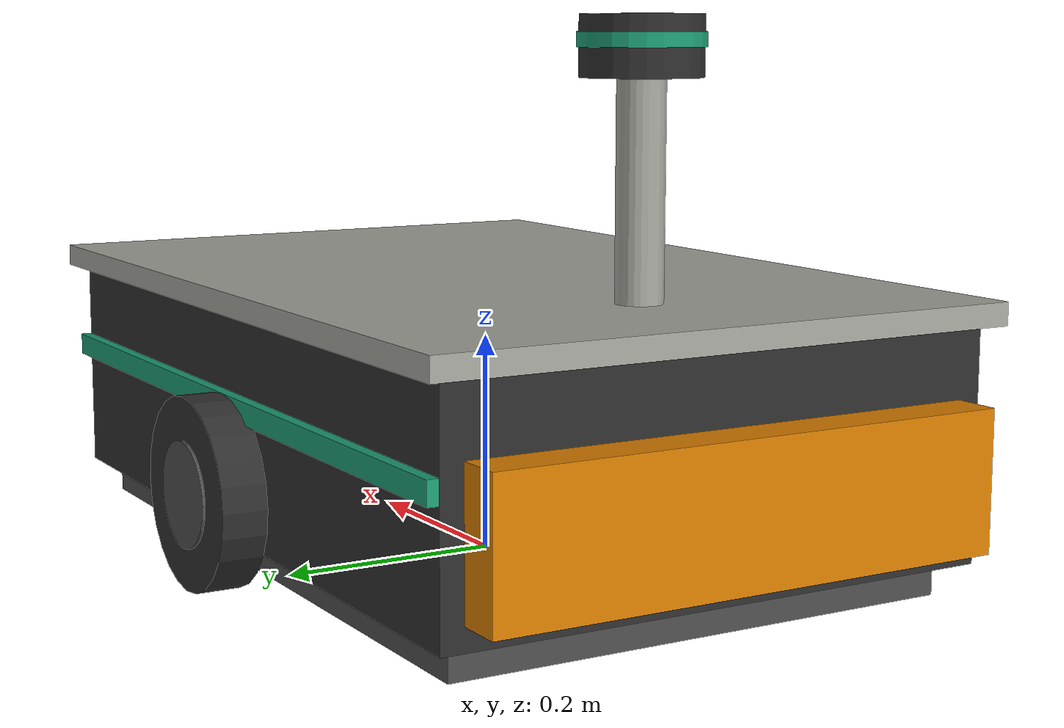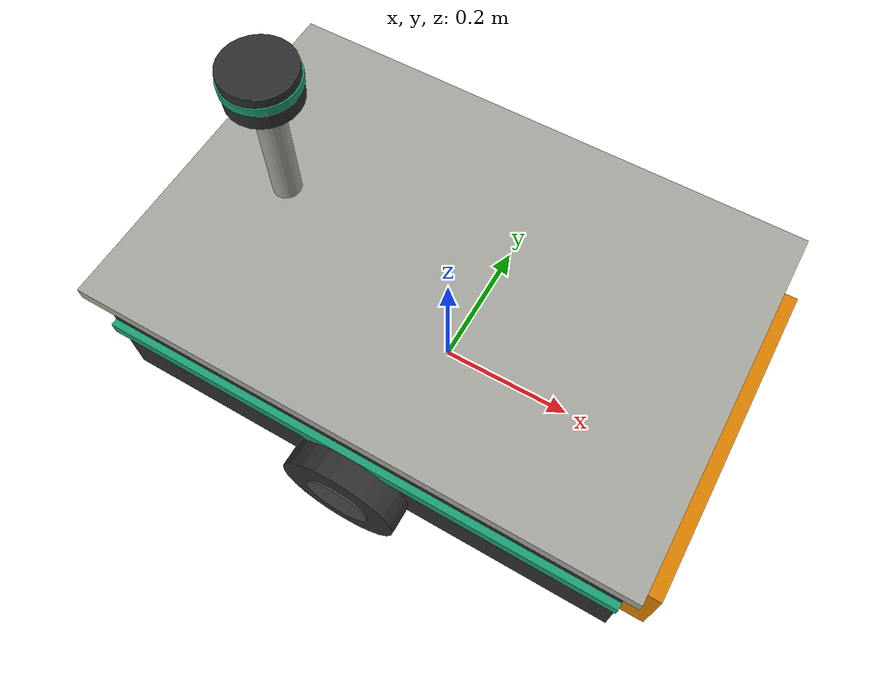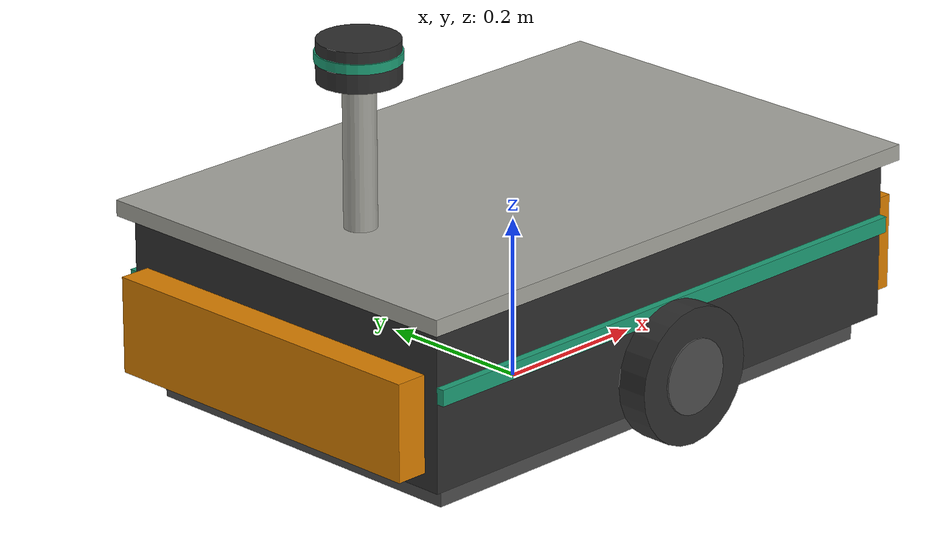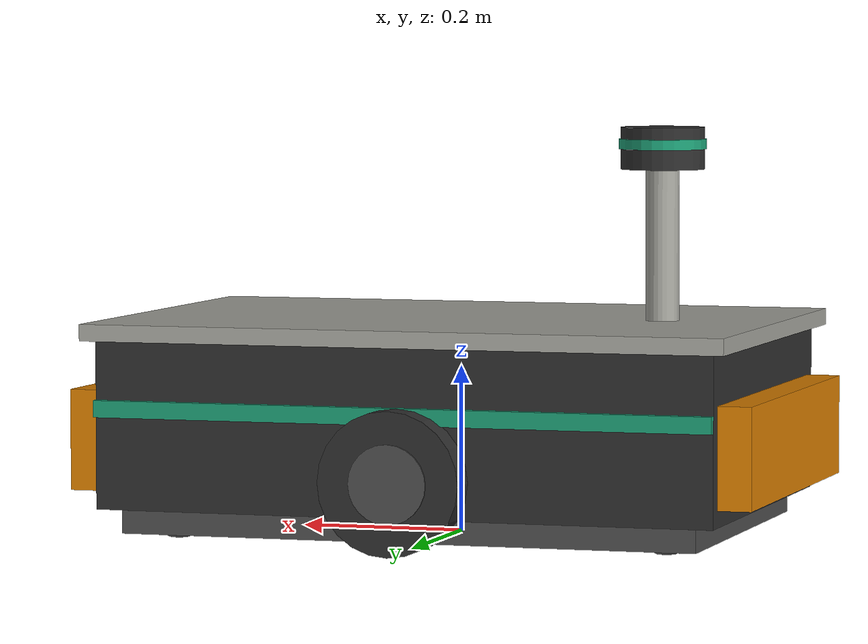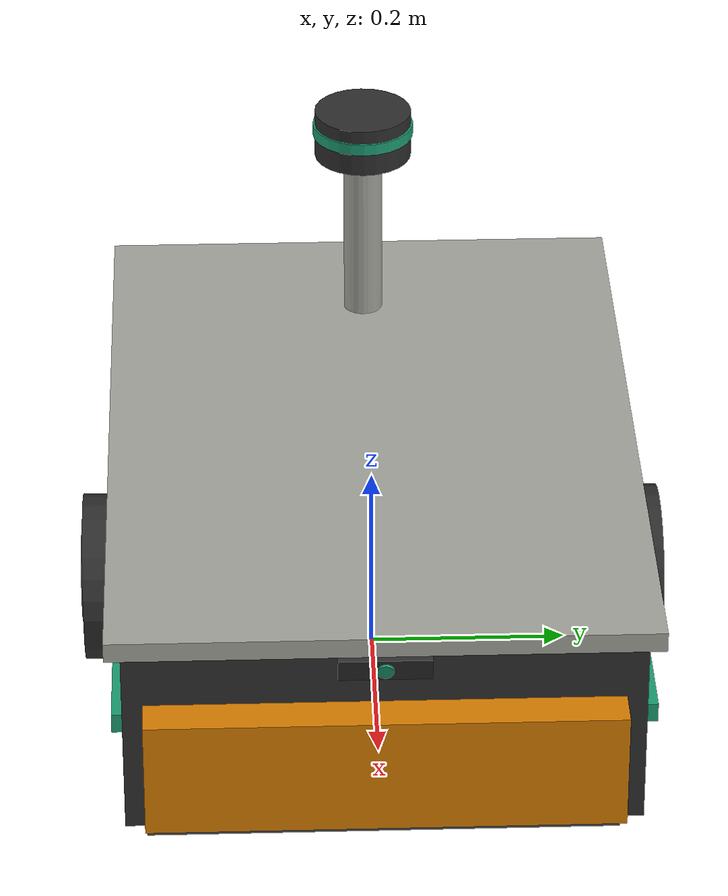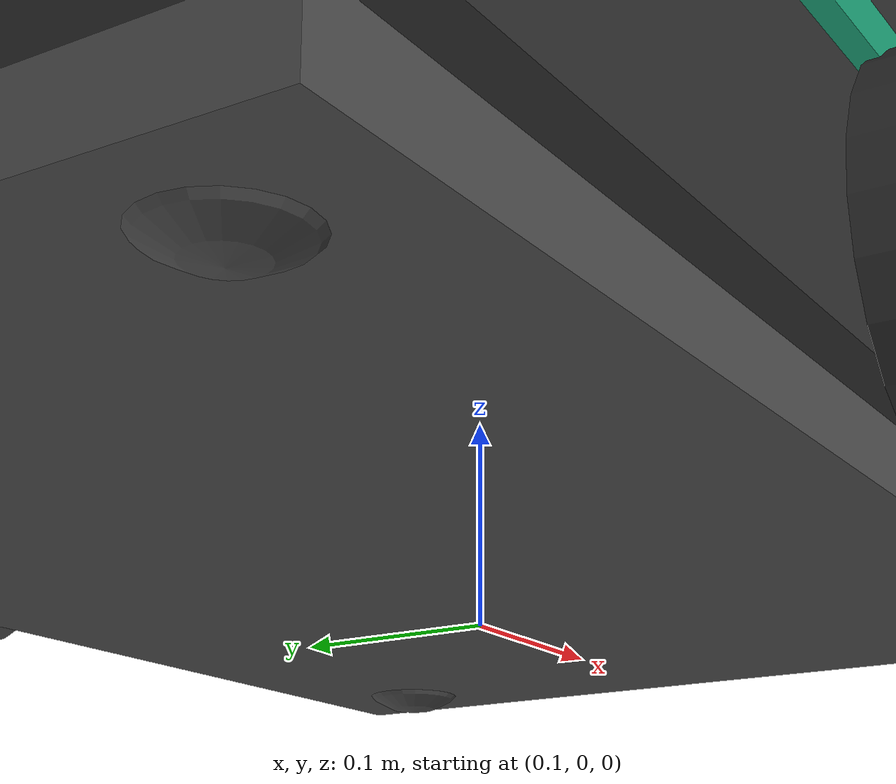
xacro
<?xml version="1.0"?>
<robot xmlns:xacro="http://www.ros.org/wiki/xacro" name="helmsman">

    <!-- ================= Properties ================= -->
    <xacro:property name="body_length" value="0.75"/>
    <xacro:property name="body_width" value="0.50"/>
    <xacro:property name="body_height" value="0.20"/>
    <xacro:property name="body_mass" value="25.0"/>

    <xacro:property name="wheel_radius" value="0.085"/>
    <xacro:property name="ground_clearance" value="0.04"/>

    <xacro:property name="wheel_width" value="0.04"/>
    <xacro:property name="wheel_mass" value="1.5"/>
    <xacro:property name="wheel_x_offset" value="0.0"/>
    <xacro:property name="caster_radius" value="0.04"/>
    <xacro:property name="caster_mass" value="0.3"/>
    <xacro:property name="caster_x" value="0.30"/>
    <xacro:property name="caster_y" value="0.17"/>

    <xacro:property name="mast_height" value="0.18"/>
    <xacro:property name="mast_radius" value="0.02"/>
    <xacro:property name="lidar_radius" value="0.05"/>
    <xacro:property name="lidar_height" value="0.05"/>
    <xacro:property name="lidar_mass" value="0.4"/>
    <xacro:property name="camera_tilt_deg" value="12"/>

    <!-- ================= Materials (as macros, inlined per visual) ================= -->
    <xacro:macro name="mat_charcoal">
        <material name="charcoal">
            <color rgba="0.18 0.18 0.18 1.0"/>
        </material>
    </xacro:macro>
    <xacro:macro name="mat_light_gray">
        <material name="light_gray">
            <color rgba="0.65 0.65 0.62 1.0"/>
        </material>
    </xacro:macro>
    <xacro:macro name="mat_dark_gray">
        <material name="dark_gray">
            <color rgba="0.30 0.30 0.30 1.0"/>
        </material>
    </xacro:macro>
    <xacro:macro name="mat_teal">
        <material name="teal">
            <color rgba="0.11 0.62 0.46 1.0"/>
        </material>
    </xacro:macro>
    <xacro:macro name="mat_orange">
        <material name="orange">
            <color rgba="0.86 0.50 0.0 1.0"/>
        </material>
    </xacro:macro>

    <!-- ================= Inertia macros ================= -->
    <xacro:macro name="box_inertia" params="m x y z">
        <inertial>
            <mass value="${m}"/>
            <inertia ixx="${(m/12.0)*(y*y+z*z)}" ixy="0" ixz="0" iyy="${(m/12.0)*(x*x+z*z)}" iyz="0" izz="${(m/12.0)*(x*x+y*y)}"/>
        </inertial>
    </xacro:macro>

    <xacro:macro name="cylinder_inertia" params="m r h">
        <inertial>
            <mass value="${m}"/>
            <inertia ixx="${(m/12.0)*(3*r*r + h*h)}" ixy="0" ixz="0" iyy="${(m/12.0)*(3*r*r + h*h)}" iyz="0" izz="${(m/2.0)*r*r}"/>
        </inertial>
    </xacro:macro>

    <xacro:macro name="sphere_inertia" params="m r">
        <inertial>
            <mass value="${m}"/>
            <inertia ixx="${(2.0/5.0)*m*r*r}" ixy="0" ixz="0" iyy="${(2.0/5.0)*m*r*r}" iyz="0" izz="${(2.0/5.0)*m*r*r}"/>
        </inertial>
    </xacro:macro>

    <!-- ================= Drive wheels ================= -->
    <xacro:macro name="drive_wheel" params="side reflect">
        <link name="${side}_wheel_link">
            <visual>
                <origin rpy="${pi/2} 0 0"/>
                <geometry>
                    <cylinder radius="${wheel_radius}" length="${wheel_width}"/>
                </geometry>
                <xacro:mat_charcoal/>
            </visual>
            <!-- hub cap: shallower, slightly wider-looking dark disc -->
            <visual>
                <origin xyz="0 ${reflect * wheel_width/2} 0" rpy="${pi/2} 0 0"/>
                <geometry>
                    <cylinder radius="${wheel_radius * 0.55}" length="0.005"/>
                </geometry>
                <xacro:mat_dark_gray/>
            </visual>
            <collision>
                <origin rpy="${pi/2} 0 0"/>
                <geometry>
                    <cylinder radius="${wheel_radius}" length="${wheel_width}"/>
                </geometry>
            </collision>
            <xacro:cylinder_inertia m="${wheel_mass}" r="${wheel_radius}" h="${wheel_width}"/>
        </link>

        <joint name="${side}_wheel_joint" type="continuous">
            <parent link="base_link"/>
            <child link="${side}_wheel_link"/>
            <origin xyz="${wheel_x_offset} ${reflect * (body_width/2 + wheel_width/2 + 0.005)} ${-(ground_clearance + body_height/2) + wheel_radius}" rpy="0 0 0"/>
            <axis xyz="0 1 0"/>
        </joint>
    </xacro:macro>

    <xacro:drive_wheel side="left" reflect="1"/>
    <xacro:drive_wheel side="right" reflect="-1"/>

    <!-- ================= Casters: frictionless spheres ================= -->
    <xacro:macro name="caster" params="prefix x_reflect y_reflect">
        <link name="${prefix}_caster_link">
            <visual>
                <geometry>
                    <sphere radius="${caster_radius}"/>
                </geometry>
                <xacro:mat_dark_gray/>
            </visual>
            <collision>
                <geometry>
                    <sphere radius="${caster_radius}"/>
                </geometry>
            </collision>
            <xacro:sphere_inertia m="${caster_mass}" r="${caster_radius}"/>
        </link>

        <joint name="${prefix}_caster_joint" type="fixed">
            <parent link="base_link"/>
            <child link="${prefix}_caster_link"/>
            <origin xyz="${x_reflect * caster_x} ${y_reflect * caster_y} ${-(ground_clearance + body_height/2) + caster_radius}"/>
        </joint>
    </xacro:macro>

    <xacro:caster prefix="front_left" x_reflect="1" y_reflect="1"/>
    <xacro:caster prefix="front_right" x_reflect="1" y_reflect="-1"/>
    <xacro:caster prefix="rear_left" x_reflect="-1" y_reflect="1"/>
    <xacro:caster prefix="rear_right" x_reflect="-1" y_reflect="-1"/>

    <!-- ================= base_footprint ================= -->
    <link name="base_footprint"/>

    <joint name="base_footprint_joint" type="fixed">
        <parent link="base_footprint"/>
        <child link="base_link"/>
        <origin xyz="0 0 ${ground_clearance + body_height/2}" rpy="0 0 0"/>
    </joint>

    <!-- ================= base_link: the chassis ================= -->
    <link name="base_link">

        <!-- main body -->
        <visual>
            <geometry>
                <box size="${body_length} ${body_width} ${body_height}"/>
            </geometry>
            <xacro:mat_charcoal/>
        </visual>

        <!-- deck plate: slightly larger, thin, sits on top -->
        <visual>
            <origin xyz="0 0 ${body_height/2 + 0.01}"/>
            <geometry>
                <box size="${body_length + 0.03} ${body_width + 0.03} 0.02"/>
            </geometry>
            <xacro:mat_light_gray/>
        </visual>

        <!-- underbody skirt: narrower, hangs below -->
        <visual>
            <origin xyz="0 0 ${-body_height/2 - 0.015}"/>
            <geometry>
                <box size="${body_length - 0.05} ${body_width - 0.04} 0.03"/>
            </geometry>
            <xacro:mat_dark_gray/>
        </visual>

        <!-- LED strips, left and right flanks -->
        <visual>
            <origin xyz="0 ${ body_width/2 + 0.005} 0.02"/>
            <geometry>
                <box size="${body_length} 0.01 0.02"/>
            </geometry>
            <xacro:mat_teal/>
        </visual>
        <visual>
            <origin xyz="0 ${-body_width/2 - 0.005} 0.02"/>
            <geometry>
                <box size="${body_length} 0.01 0.02"/>
            </geometry>
            <xacro:mat_teal/>
        </visual>

        <!-- bumper bars, front and rear -->
        <visual>
            <origin xyz="${ body_length/2 + 0.02} 0 -0.02"/>
            <geometry>
                <box size="0.04 ${body_width - 0.04} 0.12"/>
            </geometry>
            <xacro:mat_orange/>
        </visual>
        <visual>
            <origin xyz="${-body_length/2 - 0.02} 0 -0.02"/>
            <geometry>
                <box size="0.04 ${body_width - 0.04} 0.12"/>
            </geometry>
            <xacro:mat_orange/>
        </visual>

        <!-- sensor mast, rear of deck -->
        <visual>
            <origin xyz="-0.25 0 ${body_height/2 + 0.02 + mast_height/2}"/>
            <geometry>
                <cylinder radius="${mast_radius}" length="${mast_height}"/>
            </geometry>
            <xacro:mat_light_gray/>
        </visual>

        <!-- ONE simple collision for the whole chassis -->
        <collision>
            <geometry>
                <box size="${body_length + 0.08} ${body_width} ${body_height + 0.05}"/>
            </geometry>
        </collision>

        <xacro:box_inertia m="${body_mass}" x="${body_length}" y="${body_width}" z="${body_height}"/>
    </link>

    <!-- ================= Lidar ================= -->
    <link name="lidar_link">
        <visual>
            <geometry>
                <cylinder radius="${lidar_radius}" length="${lidar_height}"/>
            </geometry>
            <xacro:mat_charcoal/>
        </visual>
        <!-- emitter window band -->
        <visual>
            <origin xyz="0 0 0.005"/>
            <geometry>
                <cylinder radius="${lidar_radius + 0.002}" length="0.012"/>
            </geometry>
            <xacro:mat_teal/>
        </visual>
        <collision>
            <geometry>
                <cylinder radius="${lidar_radius}" length="${lidar_height}"/>
            </geometry>
        </collision>
        <xacro:cylinder_inertia m="${lidar_mass}" r="${lidar_radius}" h="${lidar_height}"/>
    </link>

    <joint name="lidar_joint" type="fixed">
        <parent link="base_link"/>
        <child link="lidar_link"/>
        <origin xyz="-0.25 0 ${body_height/2 + 0.02 + mast_height + lidar_height/2}" rpy="0 0 0"/>
    </joint>

    <!-- ================= Depth camera ================= -->
    <link name="camera_link">
        <visual>
            <geometry>
                <box size="0.02 0.09 0.025"/>
            </geometry>
            <xacro:mat_charcoal/>
        </visual>
        <!-- lens dot -->
        <visual>
            <origin xyz="0.011 0 0" rpy="0 ${pi/2} 0"/>
            <geometry>
                <cylinder radius="0.008" length="0.004"/>
            </geometry>
            <xacro:mat_teal/>
        </visual>
        <collision>
            <geometry>
                <box size="0.02 0.09 0.025"/>
            </geometry>
        </collision>
        <xacro:box_inertia m="0.1" x="0.02" y="0.09" z="0.025"/>
    </link>

    <joint name="camera_joint" type="fixed">
        <parent link="base_link"/>
        <child link="camera_link"/>
        <origin xyz="${body_length/2 - 0.005} 0 ${body_height/2 - 0.02}" rpy="0 ${camera_tilt_deg * pi / 180.0} 0"/>
    </joint>

    <link name="camera_optical_frame"/>

    <joint name="camera_optical_joint" type="fixed">
        <parent link="camera_link"/>
        <child link="camera_optical_frame"/>
        <origin xyz="0 0 0" rpy="${-pi/2} 0 ${-pi/2}"/>
    </joint>

    <xacro:include filename="$(find helmsman_description)/urdf/helmsman.gazebo.xacro"/>

</robot>
